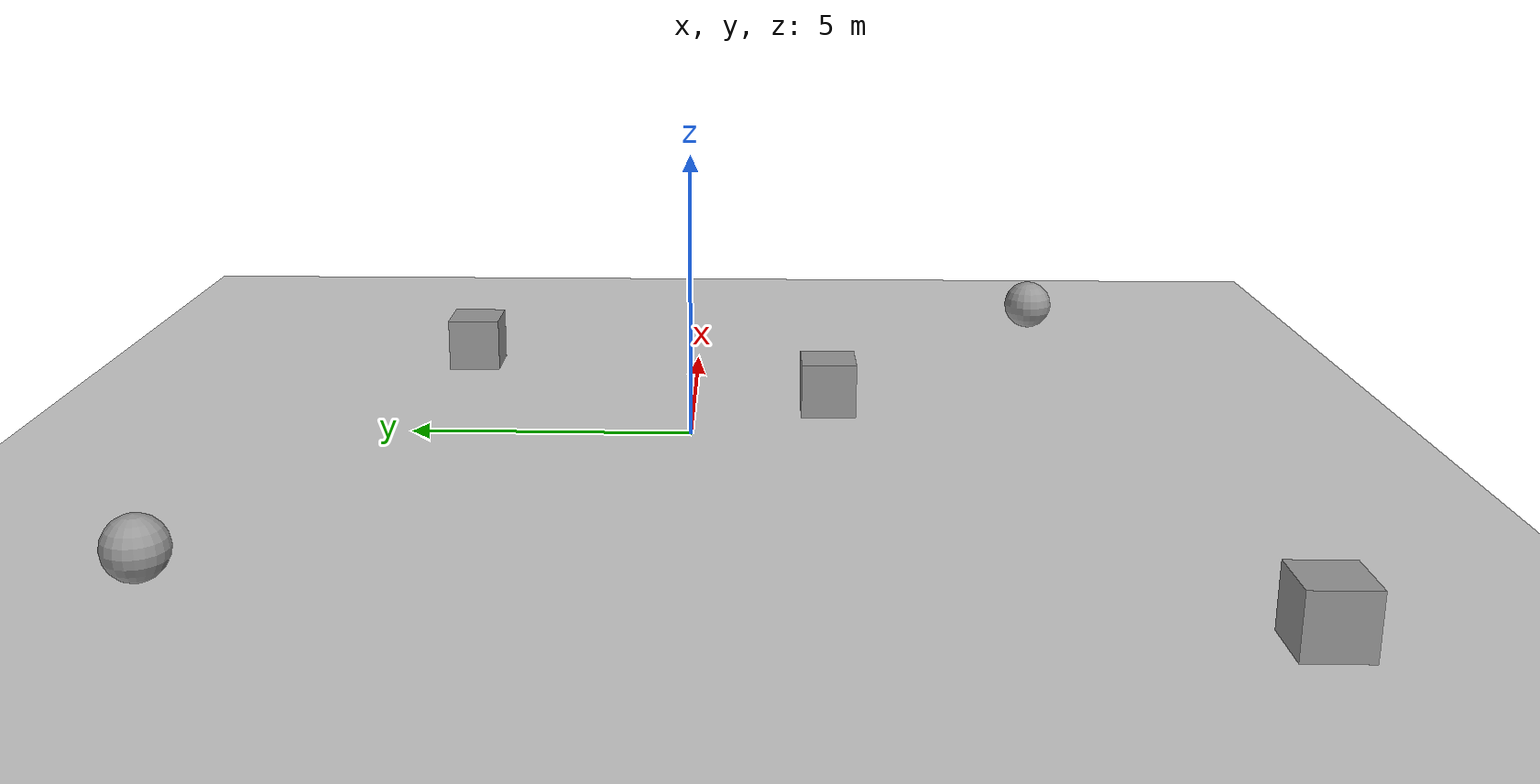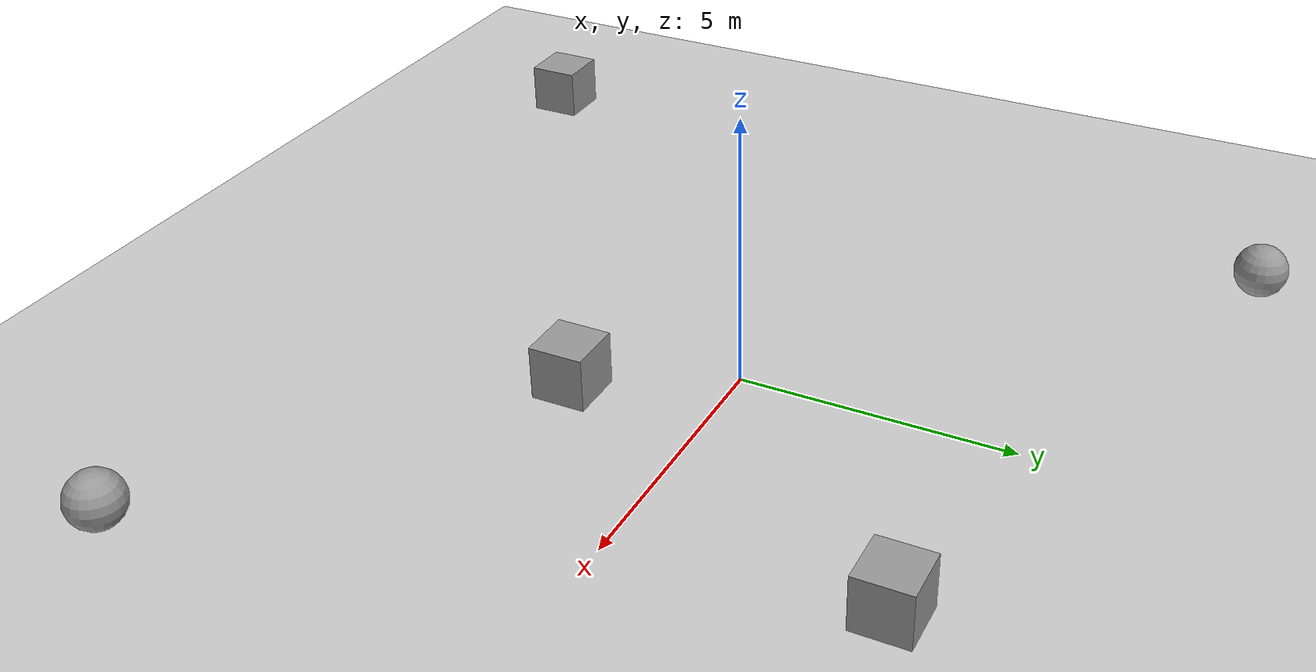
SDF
<sdf version="1.6">
 <world name="default">
  <scene><ambient>0.4 0.4 0.4 1</ambient><background>0.7 0.7 0.7 1</background><shadows>1</shadows></scene>
  <light name="sun" type="directional">
   <pose>0 0 10 0 -0 0</pose>
   <diffuse>0.8 0.8 0.8 1</diffuse>
   <specular>0.2 0.2 0.2 1</specular>
   <attenuation>
    <range>1000</range>
    <constant>0.9</constant>
    <linear>0.01</linear>
    <quadratic>0.001</quadratic>
   </attenuation>
   <direction>-0.5 0.1 -0.9</direction>
  </light>
  <model name="ground_plane">
   <static>1</static>
   <link name="link">
    <collision name="collision">
     <geometry><plane><normal>0 0 1</normal><size>100 100</size></plane></geometry>
     <surface>
      <contact><collide_bitmask>65535</collide_bitmask></contact>
      <friction><ode><mu>100</mu><mu2>50</mu2></ode></friction>
     </surface>
    </collision>
    <visual name="visual">
     <cast_shadows>0</cast_shadows>
     <geometry><plane><normal>0 0 1</normal><size>100 100</size></plane></geometry>
     <material>
      <script><uri>file://media/materials/scripts/gazebo.material</uri><name>Gazebo/Grey</name></script>
     </material>
    </visual>
   </link>
  </model>
  <physics name="default_physics" default="0" type="ode">
   <real_time_update_rate>1000</real_time_update_rate>
   <max_step_size>0.001</max_step_size>
   <real_time_factor>1</real_time_factor>
   <ode>
    <solver>
     <type>quick</type>
     <iters>150</iters>
     <precon_iters>0</precon_iters>
     <sor>1.4</sor>
     <use_dynamic_moi_rescaling>1</use_dynamic_moi_rescaling>
    </solver>
    <constraints>
     <cfm>1e-05</cfm>
     <erp>0.2</erp>
     <contact_max_correcting_vel>2000</contact_max_correcting_vel>
     <contact_surface_layer>0.01</contact_surface_layer>
    </constraints>
   </ode>
  </physics>
  <gravity>0 0 -9.8</gravity>
  <magnetic_field>6e-06 2.3e-05 -4.2e-05</magnetic_field>
  <atmosphere type="adiabatic"/>
  <audio><device>default</device></audio>
  <spherical_coordinates>
   <surface_model>EARTH_WGS84</surface_model>
   <latitude_deg>0</latitude_deg>
   <longitude_deg>0</longitude_deg>
   <elevation>0</elevation>
   <heading_deg>0</heading_deg>
  </spherical_coordinates>
  <model name="unit_box">
   <pose>4.50975 4.51248 0.5 0 -0 0</pose>
   <link name="link">
    <inertial>
     <mass>1</mass>
     <inertia>
      <ixx>0.166667</ixx>
      <ixy>0</ixy>
      <ixz>0</ixz>
      <iyy>0.166667</iyy>
      <iyz>0</iyz>
      <izz>0.166667</izz>
     </inertia>
    </inertial>
    <collision name="collision"><geometry><box><size>1 1 1</size></box></geometry></collision>
    <visual name="visual">
     <geometry><box><size>1 1 1</size></box></geometry>
     <material>
      <script><name>Gazebo/Grey</name><uri>file://media/materials/scripts/gazebo.material</uri></script>
     </material>
    </visual>
   </link>
  </model>
  <model name="unit_box_0">
   <pose>1.49728 -2.49453 0.5 0 -0 0</pose>
   <link name="link">
    <inertial>
     <mass>1</mass>
     <inertia>
      <ixx>0.166667</ixx>
      <ixy>0</ixy>
      <ixz>0</ixz>
      <iyy>0.166667</iyy>
      <iyz>0</iyz>
      <izz>0.166667</izz>
     </inertia>
    </inertial>
    <collision name="collision"><geometry><box><size>1 1 1</size></box></geometry></collision>
    <visual name="visual">
     <geometry><box><size>1 1 1</size></box></geometry>
     <material>
      <script><name>Gazebo/Grey</name><uri>file://media/materials/scripts/gazebo.material</uri></script>
     </material>
    </visual>
   </link>
  </model>
  <light name="user_spot_light_0" type="spot">
   <pose>-0.036977 -0.009102 1 0 -0 0</pose>
   <diffuse>0.5 0.5 0.5 1</diffuse>
   <specular>0.1 0.1 0.1 1</specular>
   <direction>0 0 -1</direction>
   <attenuation>
    <range>20</range>
    <constant>0.5</constant>
    <linear>0.01</linear>
    <quadratic>0.001</quadratic>
   </attenuation>
   <cast_shadows>0</cast_shadows>
   <spot><inner_angle>0.6</inner_angle><outer_angle>1</outer_angle><falloff>1</falloff></spot>
  </light>
  <light name="user_point_light_0" type="point">
   <pose>4.39387 2.43627 1 0 -0 0</pose>
   <diffuse>0.5 0.5 0.5 1</diffuse>
   <specular>0.1 0.1 0.1 1</specular>
   <attenuation>
    <range>20</range>
    <constant>0.5</constant>
    <linear>0.01</linear>
    <quadratic>0.001</quadratic>
   </attenuation>
   <cast_shadows>0</cast_shadows>
   <direction>0 0 -1</direction>
  </light>
  <light name="user_point_light_1" type="point">
   <pose>0.691826 3.27955 1 0 -0 0</pose>
   <diffuse>0.5 0.5 0.5 1</diffuse>
   <specular>0.1 0.1 0.1 1</specular>
   <attenuation>
    <range>20</range>
    <constant>0.5</constant>
    <linear>0.01</linear>
    <quadratic>0.001</quadratic>
   </attenuation>
   <cast_shadows>0</cast_shadows>
   <direction>0 0 -1</direction>
  </light>
  <light name="user_point_light_2" type="point">
   <pose>1.89218 -1.54245 1 0 -0 0</pose>
   <diffuse>0.5 0.5 0.5 1</diffuse>
   <specular>0.1 0.1 0.1 1</specular>
   <attenuation>
    <range>20</range>
    <constant>0.5</constant>
    <linear>0.01</linear>
    <quadratic>0.001</quadratic>
   </attenuation>
   <cast_shadows>0</cast_shadows>
   <direction>0 0 -1</direction>
  </light>
  <light name="user_point_light_3" type="point">
   <pose>4.69466 -2.34452 1 0 -0 0</pose>
   <diffuse>0.5 0.5 0.5 1</diffuse>
   <specular>0.1 0.1 0.1 1</specular>
   <attenuation>
    <range>20</range>
    <constant>0.5</constant>
    <linear>0.01</linear>
    <quadratic>0.001</quadratic>
   </attenuation>
   <cast_shadows>0</cast_shadows>
   <direction>0 0 -1</direction>
  </light>
  <light name="user_point_light_4" type="point">
   <pose>-1.72339 -5.34906 1 0 -0 0</pose>
   <diffuse>0.5 0.5 0.5 1</diffuse>
   <specular>0.1 0.1 0.1 1</specular>
   <attenuation>
    <range>20</range>
    <constant>0.5</constant>
    <linear>0.01</linear>
    <quadratic>0.001</quadratic>
   </attenuation>
   <cast_shadows>0</cast_shadows>
   <direction>0 0 -1</direction>
  </light>
  <model name="unit_sphere">
   <pose>7.74532 -7.18165 0.5 0 -0 0</pose>
   <link name="link">
    <inertial>
     <mass>1</mass>
     <inertia><ixx>0.1</ixx><ixy>0</ixy><ixz>0</ixz><iyy>0.1</iyy><iyz>0</iyz><izz>0.1</izz></inertia>
    </inertial>
    <collision name="collision"><geometry><sphere><radius>0.5</radius></sphere></geometry></collision>
    <visual name="visual">
     <geometry><sphere><radius>0.5</radius></sphere></geometry>
     <material>
      <script><name>Gazebo/Grey</name><uri>file://media/materials/scripts/gazebo.material</uri></script>
     </material>
    </visual>
   </link>
  </model>
  <model name="unit_sphere_0">
   <pose>-6.76543 7.56977 0.5 0 -0 0</pose>
   <link name="link">
    <inertial>
     <mass>1</mass>
     <inertia><ixx>0.1</ixx><ixy>0</ixy><ixz>0</ixz><iyy>0.1</iyy><iyz>0</iyz><izz>0.1</izz></inertia>
    </inertial>
    <collision name="collision"><geometry><sphere><radius>0.5</radius></sphere></geometry></collision>
    <visual name="visual">
     <geometry><sphere><radius>0.5</radius></sphere></geometry>
     <material>
      <script><name>Gazebo/Grey</name><uri>file://media/materials/scripts/gazebo.material</uri></script>
     </material>
    </visual>
   </link>
  </model>
  <light name="user_point_light_5" type="point">
   <pose>-5.50256 6.23054 1 0 -0 0</pose>
   <diffuse>0.5 0.5 0.5 1</diffuse>
   <specular>0.1 0.1 0.1 1</specular>
   <attenuation>
    <range>20</range>
    <constant>0.5</constant>
    <linear>0.01</linear>
    <quadratic>0.001</quadratic>
   </attenuation>
   <cast_shadows>0</cast_shadows>
   <direction>0 0 -1</direction>
  </light>
  <model name="unit_box_1">
   <pose>-8.47712 -8.46732 0.5 0 -0 0</pose>
   <link name="link">
    <inertial>
     <mass>1</mass>
     <inertia>
      <ixx>0.166667</ixx>
      <ixy>0</ixy>
      <ixz>0</ixz>
      <iyy>0.166667</iyy>
      <iyz>0</iyz>
      <izz>0.166667</izz>
     </inertia>
    </inertial>
    <collision name="collision"><geometry><box><size>1 1 1</size></box></geometry></collision>
    <visual name="visual">
     <geometry><box><size>1 1 1</size></box></geometry>
     <material>
      <script><name>Gazebo/Grey</name><uri>file://media/materials/scripts/gazebo.material</uri></script>
     </material>
    </visual>
   </link>
  </model>
 </world>
</sdf>
